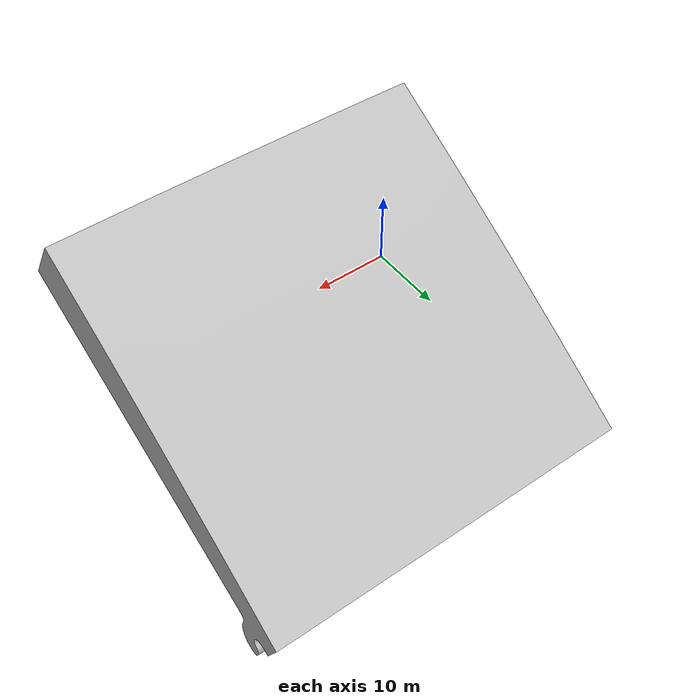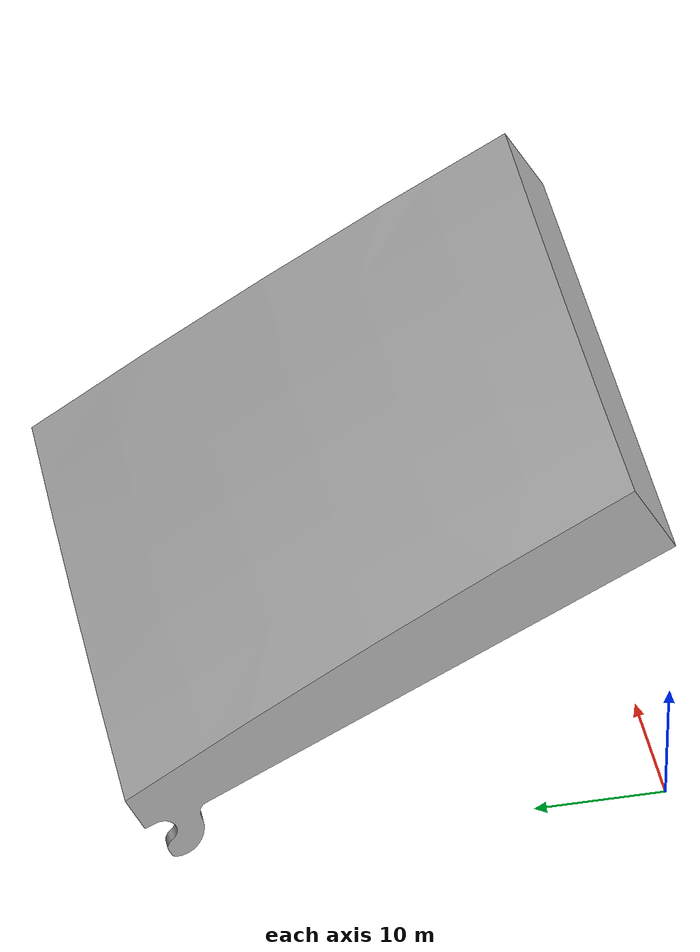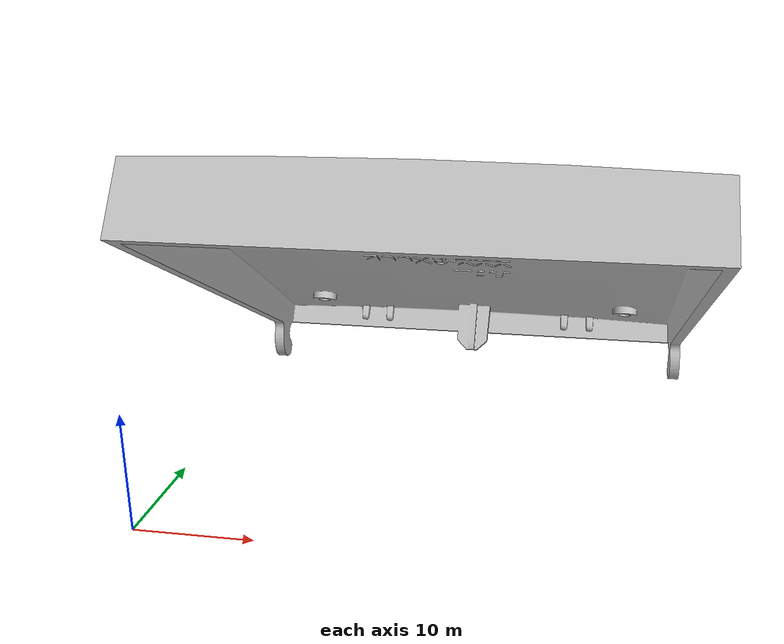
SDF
<?xml version="1.0" ?>
<sdf version="1.5">

    <!-- A global light source -->

<model name="button">
  <!-- Give the base link a unique name -->
  <link name="button">

    <!-- Offset the base by half the lenght of the cylinder -->
    <pose>0 0 0 0 0 0</pose>

    <collision name="button">
	<pose>0 0 0 0 0 0</pose>
      <geometry>
    <mesh>
      <uri>model://button/meshes/Button_simplified.stl </uri>
    </mesh>
      </geometry>
    </collision>

<visual name="button">
  <!-- Offset the visual by have the base's height. We are not rotating
       mesh since symmetrical -->
  <pose>0 0 0 0 0 0</pose>
  <geometry>
    <mesh>
      <uri>model://button/meshes/Button_simplified.stl </uri>
    </mesh>
  </geometry>
</visual>
 </link>
<static>true</static>
</model>
</sdf>
